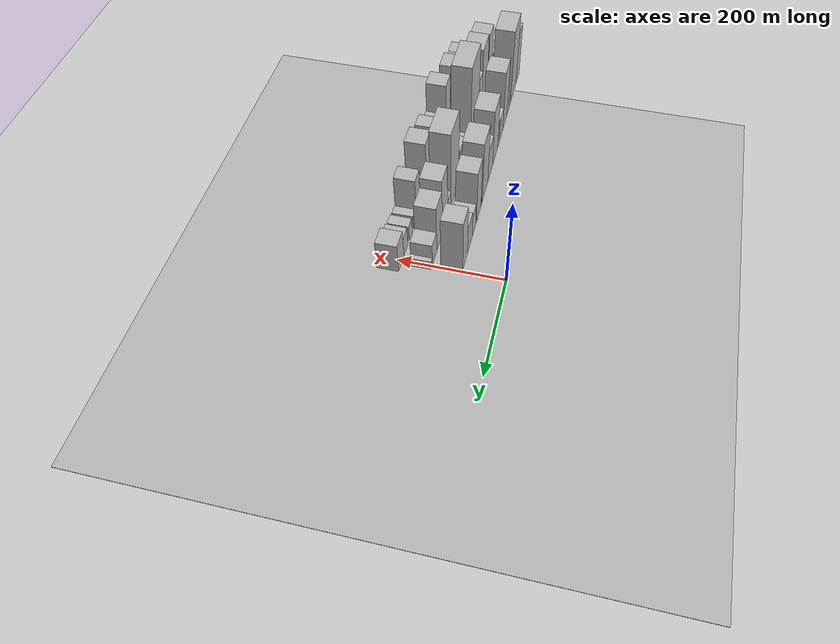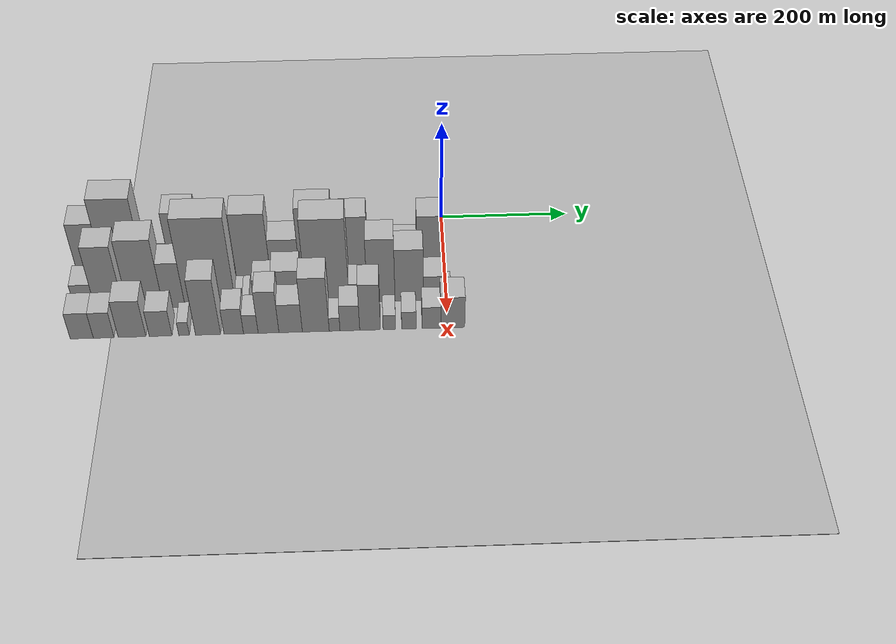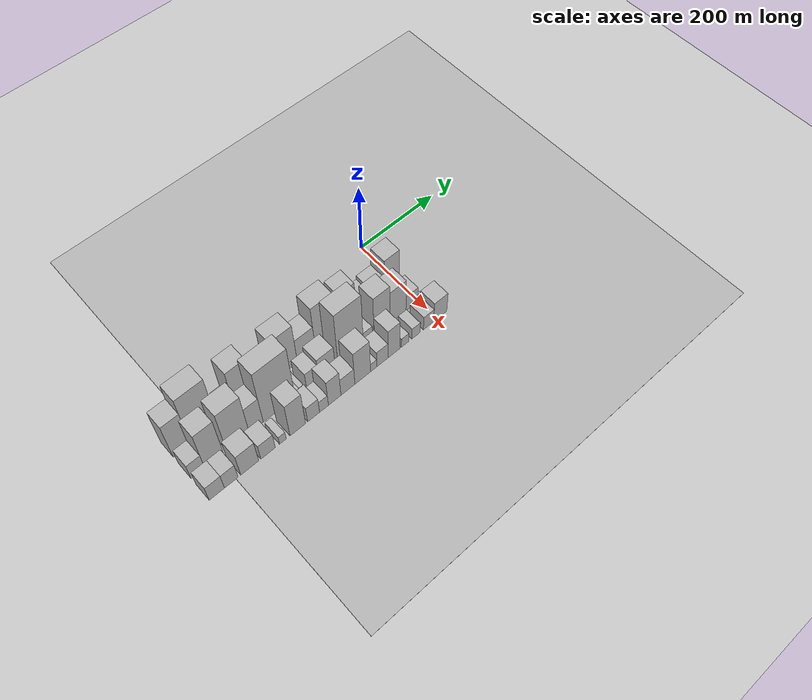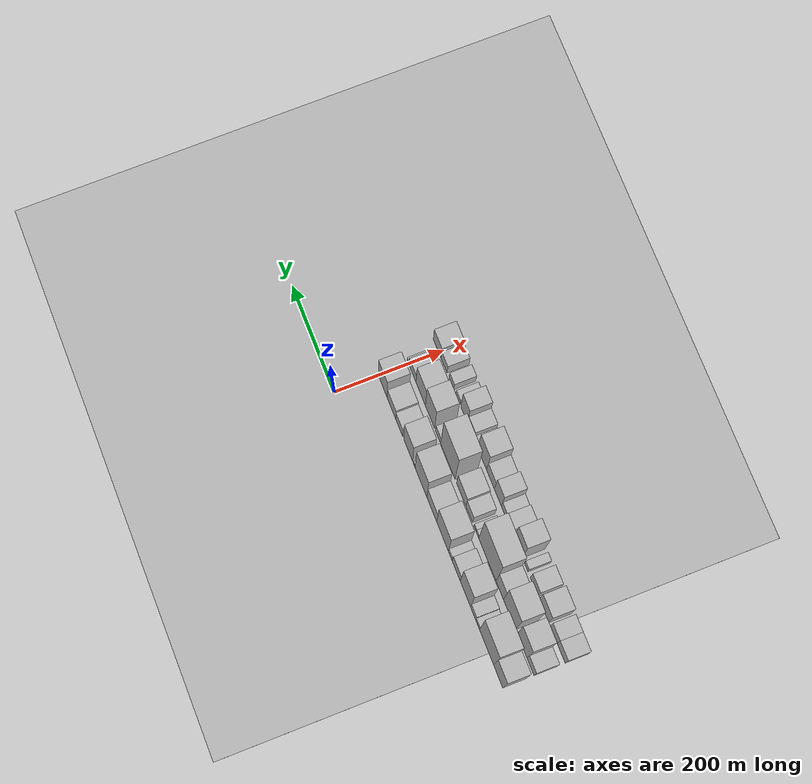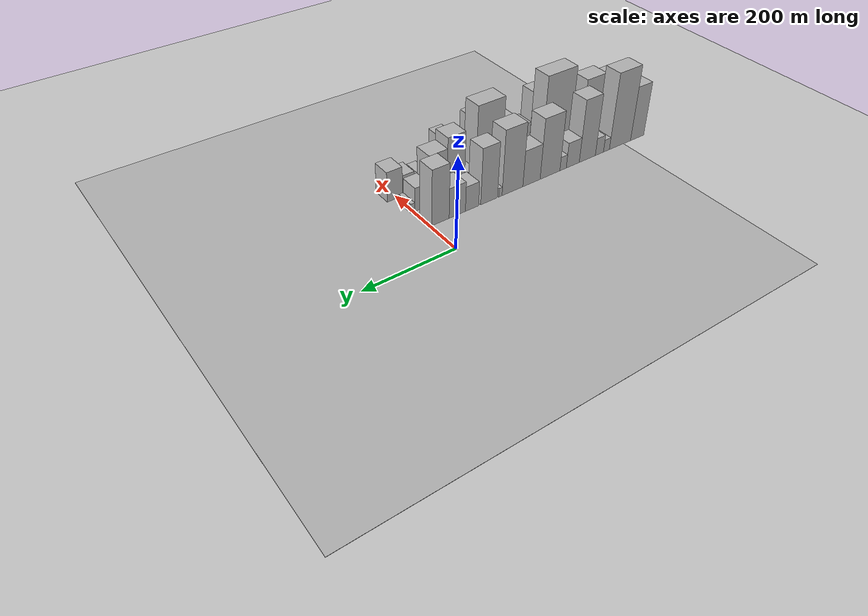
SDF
<sdf version="1.6">
 <world name="default">
  <include><name>ground_plane_1</name><uri>model://HANNAS_ground_plane</uri></include>
  <include>
   <name>ground_plane_2</name>
   <uri>model://HANNAS_ground_plane</uri>
   <pose>100 0 0  0 0 0</pose>
  </include>
  <model name="building_1">
   <static>1</static>
   <pose>100.0000 -540.2787 0 0.000000 0.000000 0.000000</pose>
   <link name="link">
    <pose>0 0 64.50 0 0 0</pose>
    <collision name="collision"><geometry><box><size>40.0000 39.4425 129.0000</size></box></geometry></collision>
    <visual name="visual">
     <cast_shadows>0</cast_shadows>
     <geometry><box><size>40.0000 39.4425 129.0000</size></box></geometry>
     <material>
      <script>
       <uri>model://HANNAS_wall/materials/scripts</uri>
       <uri>model://HANNAS_wall/materials/textures</uri>
       <name>vrc/HANNAS_wall</name>
      </script>
     </material>
    </visual>
   </link>
  </model>
  <model name="building_2">
   <static>1</static>
   <pose>100.0000 -489.5834 0 0.000000 0.000000 0.000000</pose>
   <link name="link">
    <pose>0 0 90.00 0 0 0</pose>
    <collision name="collision"><geometry><box><size>40.0000 61.9483 180.0000</size></box></geometry></collision>
    <visual name="visual">
     <cast_shadows>0</cast_shadows>
     <geometry><box><size>40.0000 61.9483 180.0000</size></box></geometry>
     <material>
      <script>
       <uri>model://HANNAS_wall/materials/scripts</uri>
       <uri>model://HANNAS_wall/materials/textures</uri>
       <name>vrc/HANNAS_wall</name>
      </script>
     </material>
    </visual>
   </link>
  </model>
  <model name="building_3">
   <static>1</static>
   <pose>100.0000 -450.0688 0 0.000000 0.000000 0.000000</pose>
   <link name="link">
    <pose>0 0 15.00 0 0 0</pose>
    <collision name="collision"><geometry><box><size>40.0000 17.0808 30.0000</size></box></geometry></collision>
    <visual name="visual">
     <cast_shadows>0</cast_shadows>
     <geometry><box><size>40.0000 17.0808 30.0000</size></box></geometry>
     <material>
      <script>
       <uri>model://HANNAS_wall/materials/scripts</uri>
       <uri>model://HANNAS_wall/materials/textures</uri>
       <name>vrc/HANNAS_wall</name>
      </script>
     </material>
    </visual>
   </link>
  </model>
  <model name="building_4">
   <static>1</static>
   <pose>100.0000 -429.9862 0 0.000000 0.000000 0.000000</pose>
   <link name="link">
    <pose>0 0 21.00 0 0 0</pose>
    <collision name="collision"><geometry><box><size>40.0000 23.0844 42.0000</size></box></geometry></collision>
    <visual name="visual">
     <cast_shadows>0</cast_shadows>
     <geometry><box><size>40.0000 23.0844 42.0000</size></box></geometry>
     <material>
      <script>
       <uri>model://HANNAS_wall/materials/scripts</uri>
       <uri>model://HANNAS_wall/materials/textures</uri>
       <name>vrc/HANNAS_wall</name>
      </script>
     </material>
    </visual>
   </link>
  </model>
  <model name="building_5">
   <static>1</static>
   <pose>100.0000 -395.9503 0 0.000000 0.000000 0.000000</pose>
   <link name="link">
    <pose>0 0 73.50 0 0 0</pose>
    <collision name="collision"><geometry><box><size>40.0000 44.9876 147.0000</size></box></geometry></collision>
    <visual name="visual">
     <cast_shadows>0</cast_shadows>
     <geometry><box><size>40.0000 44.9876 147.0000</size></box></geometry>
     <material>
      <script>
       <uri>model://HANNAS_wall/materials/scripts</uri>
       <uri>model://HANNAS_wall/materials/textures</uri>
       <name>vrc/HANNAS_wall</name>
      </script>
     </material>
    </visual>
   </link>
  </model>
  <model name="building_6">
   <static>1</static>
   <pose>100.0000 -355.6805 0 0.000000 0.000000 0.000000</pose>
   <link name="link">
    <pose>0 0 30.00 0 0 0</pose>
    <collision name="collision"><geometry><box><size>40.0000 35.5519 60.0000</size></box></geometry></collision>
    <visual name="visual">
     <cast_shadows>0</cast_shadows>
     <geometry><box><size>40.0000 35.5519 60.0000</size></box></geometry>
     <material>
      <script>
       <uri>model://HANNAS_wall/materials/scripts</uri>
       <uri>model://HANNAS_wall/materials/textures</uri>
       <name>vrc/HANNAS_wall</name>
      </script>
     </material>
    </visual>
   </link>
  </model>
  <model name="building_7">
   <static>1</static>
   <pose>100.0000 -329.2143 0 0.000000 0.000000 0.000000</pose>
   <link name="link">
    <pose>0 0 16.50 0 0 0</pose>
    <collision name="collision"><geometry><box><size>40.0000 17.3806 33.0000</size></box></geometry></collision>
    <visual name="visual">
     <cast_shadows>0</cast_shadows>
     <geometry><box><size>40.0000 17.3806 33.0000</size></box></geometry>
     <material>
      <script>
       <uri>model://HANNAS_wall/materials/scripts</uri>
       <uri>model://HANNAS_wall/materials/textures</uri>
       <name>vrc/HANNAS_wall</name>
      </script>
     </material>
    </visual>
   </link>
  </model>
  <model name="building_8">
   <static>1</static>
   <pose>100.0000 -294.2774 0 0.000000 0.000000 0.000000</pose>
   <link name="link">
    <pose>0 0 70.50 0 0 0</pose>
    <collision name="collision"><geometry><box><size>40.0000 52.4931 141.0000</size></box></geometry></collision>
    <visual name="visual">
     <cast_shadows>0</cast_shadows>
     <geometry><box><size>40.0000 52.4931 141.0000</size></box></geometry>
     <material>
      <script>
       <uri>model://HANNAS_wall/materials/scripts</uri>
       <uri>model://HANNAS_wall/materials/textures</uri>
       <name>vrc/HANNAS_wall</name>
      </script>
     </material>
    </visual>
   </link>
  </model>
  <model name="building_9">
   <static>1</static>
   <pose>100.0000 -245.6780 0 0.000000 0.000000 0.000000</pose>
   <link name="link">
    <pose>0 0 42.00 0 0 0</pose>
    <collision name="collision"><geometry><box><size>40.0000 44.7058 84.0000</size></box></geometry></collision>
    <visual name="visual">
     <cast_shadows>0</cast_shadows>
     <geometry><box><size>40.0000 44.7058 84.0000</size></box></geometry>
     <material>
      <script>
       <uri>model://HANNAS_wall/materials/scripts</uri>
       <uri>model://HANNAS_wall/materials/textures</uri>
       <name>vrc/HANNAS_wall</name>
      </script>
     </material>
    </visual>
   </link>
  </model>
  <model name="building_10">
   <static>1</static>
   <pose>100.0000 -196.9684 0 0.000000 0.000000 0.000000</pose>
   <link name="link">
    <pose>0 0 75.00 0 0 0</pose>
    <collision name="collision"><geometry><box><size>40.0000 52.7134 150.0000</size></box></geometry></collision>
    <visual name="visual">
     <cast_shadows>0</cast_shadows>
     <geometry><box><size>40.0000 52.7134 150.0000</size></box></geometry>
     <material>
      <script>
       <uri>model://HANNAS_wall/materials/scripts</uri>
       <uri>model://HANNAS_wall/materials/textures</uri>
       <name>vrc/HANNAS_wall</name>
      </script>
     </material>
    </visual>
   </link>
  </model>
  <model name="building_11">
   <static>1</static>
   <pose>100.0000 -166.2816 0 0.000000 0.000000 0.000000</pose>
   <link name="link">
    <pose>0 0 10.50 0 0 0</pose>
    <collision name="collision"><geometry><box><size>40.0000 8.6601 21.0000</size></box></geometry></collision>
    <visual name="visual">
     <cast_shadows>0</cast_shadows>
     <geometry><box><size>40.0000 8.6601 21.0000</size></box></geometry>
     <material>
      <script>
       <uri>model://HANNAS_wall/materials/scripts</uri>
       <uri>model://HANNAS_wall/materials/textures</uri>
       <name>vrc/HANNAS_wall</name>
      </script>
     </material>
    </visual>
   </link>
  </model>
  <model name="building_12">
   <static>1</static>
   <pose>100.0000 -138.4659 0 0.000000 0.000000 0.000000</pose>
   <link name="link">
    <pose>0 0 64.50 0 0 0</pose>
    <collision name="collision"><geometry><box><size>40.0000 40.9712 129.0000</size></box></geometry></collision>
    <visual name="visual">
     <cast_shadows>0</cast_shadows>
     <geometry><box><size>40.0000 40.9712 129.0000</size></box></geometry>
     <material>
      <script>
       <uri>model://HANNAS_wall/materials/scripts</uri>
       <uri>model://HANNAS_wall/materials/textures</uri>
       <name>vrc/HANNAS_wall</name>
      </script>
     </material>
    </visual>
   </link>
  </model>
  <model name="building_13">
   <static>1</static>
   <pose>100.0000 -97.1301 0 0.000000 0.000000 0.000000</pose>
   <link name="link">
    <pose>0 0 28.50 0 0 0</pose>
    <collision name="collision"><geometry><box><size>40.0000 31.7005 57.0000</size></box></geometry></collision>
    <visual name="visual">
     <cast_shadows>0</cast_shadows>
     <geometry><box><size>40.0000 31.7005 57.0000</size></box></geometry>
     <material>
      <script>
       <uri>model://HANNAS_wall/materials/scripts</uri>
       <uri>model://HANNAS_wall/materials/textures</uri>
       <name>vrc/HANNAS_wall</name>
      </script>
     </material>
    </visual>
   </link>
  </model>
  <model name="building_14">
   <static>1</static>
   <pose>100.0000 -62.0921 0 0.000000 0.000000 0.000000</pose>
   <link name="link">
    <pose>0 0 34.50 0 0 0</pose>
    <collision name="collision"><geometry><box><size>40.0000 38.3755 69.0000</size></box></geometry></collision>
    <visual name="visual">
     <cast_shadows>0</cast_shadows>
     <geometry><box><size>40.0000 38.3755 69.0000</size></box></geometry>
     <material>
      <script>
       <uri>model://HANNAS_wall/materials/scripts</uri>
       <uri>model://HANNAS_wall/materials/textures</uri>
       <name>vrc/HANNAS_wall</name>
      </script>
     </material>
    </visual>
   </link>
  </model>
  <model name="building_15">
   <static>1</static>
   <pose>100.0000 -22.9178 0 0.000000 0.000000 0.000000</pose>
   <link name="link">
    <pose>0 0 63.00 0 0 0</pose>
    <collision name="collision"><geometry><box><size>40.0000 39.9730 126.0000</size></box></geometry></collision>
    <visual name="visual">
     <cast_shadows>0</cast_shadows>
     <geometry><box><size>40.0000 39.9730 126.0000</size></box></geometry>
     <material>
      <script>
       <uri>model://HANNAS_wall/materials/scripts</uri>
       <uri>model://HANNAS_wall/materials/textures</uri>
       <name>vrc/HANNAS_wall</name>
      </script>
     </material>
    </visual>
   </link>
  </model>
  <model name="building_34">
   <static>1</static>
   <pose>155.0000 -544.8172 0 0.000000 0.000000 0.000000</pose>
   <link name="link">
    <pose>0 0 28.50 0 0 0</pose>
    <collision name="collision"><geometry><box><size>40.0000 30.3655 57.0000</size></box></geometry></collision>
    <visual name="visual">
     <cast_shadows>0</cast_shadows>
     <geometry><box><size>40.0000 30.3655 57.0000</size></box></geometry>
     <material>
      <script>
       <uri>model://HANNAS_wall/materials/scripts</uri>
       <uri>model://HANNAS_wall/materials/textures</uri>
       <name>vrc/HANNAS_wall</name>
      </script>
     </material>
    </visual>
   </link>
  </model>
  <model name="building_35">
   <static>1</static>
   <pose>155.0000 -508.4048 0 0.000000 0.000000 0.000000</pose>
   <link name="link">
    <pose>0 0 69.00 0 0 0</pose>
    <collision name="collision"><geometry><box><size>40.0000 42.4594 138.0000</size></box></geometry></collision>
    <visual name="visual">
     <cast_shadows>0</cast_shadows>
     <geometry><box><size>40.0000 42.4594 138.0000</size></box></geometry>
     <material>
      <script>
       <uri>model://HANNAS_wall/materials/scripts</uri>
       <uri>model://HANNAS_wall/materials/textures</uri>
       <name>vrc/HANNAS_wall</name>
      </script>
     </material>
    </visual>
   </link>
  </model>
  <model name="building_36">
   <static>1</static>
   <pose>155.0000 -453.7786 0 0.000000 0.000000 0.000000</pose>
   <link name="link">
    <pose>0 0 75.00 0 0 0</pose>
    <collision name="collision"><geometry><box><size>40.0000 52.7930 150.0000</size></box></geometry></collision>
    <visual name="visual">
     <cast_shadows>0</cast_shadows>
     <geometry><box><size>40.0000 52.7930 150.0000</size></box></geometry>
     <material>
      <script>
       <uri>model://HANNAS_wall/materials/scripts</uri>
       <uri>model://HANNAS_wall/materials/textures</uri>
       <name>vrc/HANNAS_wall</name>
      </script>
     </material>
    </visual>
   </link>
  </model>
  <model name="building_37">
   <static>1</static>
   <pose>155.0000 -411.0060 0 0.000000 0.000000 0.000000</pose>
   <link name="link">
    <pose>0 0 49.50 0 0 0</pose>
    <collision name="collision"><geometry><box><size>40.0000 32.7522 99.0000</size></box></geometry></collision>
    <visual name="visual">
     <cast_shadows>0</cast_shadows>
     <geometry><box><size>40.0000 32.7522 99.0000</size></box></geometry>
     <material>
      <script>
       <uri>model://HANNAS_wall/materials/scripts</uri>
       <uri>model://HANNAS_wall/materials/textures</uri>
       <name>vrc/HANNAS_wall</name>
      </script>
     </material>
    </visual>
   </link>
  </model>
  <model name="building_38">
   <static>1</static>
   <pose>155.0000 -356.5556 0 0.000000 0.000000 0.000000</pose>
   <link name="link">
    <pose>0 0 96.00 0 0 0</pose>
    <collision name="collision"><geometry><box><size>40.0000 76.1487 192.0000</size></box></geometry></collision>
    <visual name="visual">
     <cast_shadows>0</cast_shadows>
     <geometry><box><size>40.0000 76.1487 192.0000</size></box></geometry>
     <material>
      <script>
       <uri>model://HANNAS_wall/materials/scripts</uri>
       <uri>model://HANNAS_wall/materials/textures</uri>
       <name>vrc/HANNAS_wall</name>
      </script>
     </material>
    </visual>
   </link>
  </model>
  <model name="building_39">
   <static>1</static>
   <pose>155.0000 -312.8318 0 0.000000 0.000000 0.000000</pose>
   <link name="link">
    <pose>0 0 12.00 0 0 0</pose>
    <collision name="collision"><geometry><box><size>40.0000 11.2988 24.0000</size></box></geometry></collision>
    <visual name="visual">
     <cast_shadows>0</cast_shadows>
     <geometry><box><size>40.0000 11.2988 24.0000</size></box></geometry>
     <material>
      <script>
       <uri>model://HANNAS_wall/materials/scripts</uri>
       <uri>model://HANNAS_wall/materials/textures</uri>
       <name>vrc/HANNAS_wall</name>
      </script>
     </material>
    </visual>
   </link>
  </model>
  <model name="building_40">
   <static>1</static>
   <pose>155.0000 -301.8594 0 0.000000 0.000000 0.000000</pose>
   <link name="link">
    <pose>0 0 12.00 0 0 0</pose>
    <collision name="collision"><geometry><box><size>40.0000 10.6459 24.0000</size></box></geometry></collision>
    <visual name="visual">
     <cast_shadows>0</cast_shadows>
     <geometry><box><size>40.0000 10.6459 24.0000</size></box></geometry>
     <material>
      <script>
       <uri>model://HANNAS_wall/materials/scripts</uri>
       <uri>model://HANNAS_wall/materials/textures</uri>
       <name>vrc/HANNAS_wall</name>
      </script>
     </material>
    </visual>
   </link>
  </model>
  <model name="building_41">
   <static>1</static>
   <pose>155.0000 -275.8038 0 0.000000 0.000000 0.000000</pose>
   <link name="link">
    <pose>0 0 28.50 0 0 0</pose>
    <collision name="collision"><geometry><box><size>40.0000 29.4653 57.0000</size></box></geometry></collision>
    <visual name="visual">
     <cast_shadows>0</cast_shadows>
     <geometry><box><size>40.0000 29.4653 57.0000</size></box></geometry>
     <material>
      <script>
       <uri>model://HANNAS_wall/materials/scripts</uri>
       <uri>model://HANNAS_wall/materials/textures</uri>
       <name>vrc/HANNAS_wall</name>
      </script>
     </material>
    </visual>
   </link>
  </model>
  <model name="building_42">
   <static>1</static>
   <pose>155.0000 -240.2338 0 0.000000 0.000000 0.000000</pose>
   <link name="link">
    <pose>0 0 37.50 0 0 0</pose>
    <collision name="collision"><geometry><box><size>40.0000 41.6747 75.0000</size></box></geometry></collision>
    <visual name="visual">
     <cast_shadows>0</cast_shadows>
     <geometry><box><size>40.0000 41.6747 75.0000</size></box></geometry>
     <material>
      <script>
       <uri>model://HANNAS_wall/materials/scripts</uri>
       <uri>model://HANNAS_wall/materials/textures</uri>
       <name>vrc/HANNAS_wall</name>
      </script>
     </material>
    </visual>
   </link>
  </model>
  <model name="building_43">
   <static>1</static>
   <pose>155.0000 -179.7584 0 0.000000 0.000000 0.000000</pose>
   <link name="link">
    <pose>0 0 91.50 0 0 0</pose>
    <collision name="collision"><geometry><box><size>40.0000 65.2762 183.0000</size></box></geometry></collision>
    <visual name="visual">
     <cast_shadows>0</cast_shadows>
     <geometry><box><size>40.0000 65.2762 183.0000</size></box></geometry>
     <material>
      <script>
       <uri>model://HANNAS_wall/materials/scripts</uri>
       <uri>model://HANNAS_wall/materials/textures</uri>
       <name>vrc/HANNAS_wall</name>
      </script>
     </material>
    </visual>
   </link>
  </model>
  <model name="building_44">
   <static>1</static>
   <pose>155.0000 -135.3609 0 0.000000 0.000000 0.000000</pose>
   <link name="link">
    <pose>0 0 21.00 0 0 0</pose>
    <collision name="collision"><geometry><box><size>40.0000 23.5189 42.0000</size></box></geometry></collision>
    <visual name="visual">
     <cast_shadows>0</cast_shadows>
     <geometry><box><size>40.0000 23.5189 42.0000</size></box></geometry>
     <material>
      <script>
       <uri>model://HANNAS_wall/materials/scripts</uri>
       <uri>model://HANNAS_wall/materials/textures</uri>
       <name>vrc/HANNAS_wall</name>
      </script>
     </material>
    </visual>
   </link>
  </model>
  <model name="building_45">
   <static>1</static>
   <pose>155.0000 -98.6651 0 0.000000 0.000000 0.000000</pose>
   <link name="link">
    <pose>0 0 69.00 0 0 0</pose>
    <collision name="collision"><geometry><box><size>40.0000 41.8726 138.0000</size></box></geometry></collision>
    <visual name="visual">
     <cast_shadows>0</cast_shadows>
     <geometry><box><size>40.0000 41.8726 138.0000</size></box></geometry>
     <material>
      <script>
       <uri>model://HANNAS_wall/materials/scripts</uri>
       <uri>model://HANNAS_wall/materials/textures</uri>
       <name>vrc/HANNAS_wall</name>
      </script>
     </material>
    </visual>
   </link>
  </model>
  <model name="building_46">
   <static>1</static>
   <pose>155.0000 -56.2733 0 0.000000 0.000000 0.000000</pose>
   <link name="link">
    <pose>0 0 57.00 0 0 0</pose>
    <collision name="collision"><geometry><box><size>40.0000 42.9110 114.0000</size></box></geometry></collision>
    <visual name="visual">
     <cast_shadows>0</cast_shadows>
     <geometry><box><size>40.0000 42.9110 114.0000</size></box></geometry>
     <material>
      <script>
       <uri>model://HANNAS_wall/materials/scripts</uri>
       <uri>model://HANNAS_wall/materials/textures</uri>
       <name>vrc/HANNAS_wall</name>
      </script>
     </material>
    </visual>
   </link>
  </model>
  <model name="building_47">
   <static>1</static>
   <pose>155.0000 -18.7076 0 0.000000 0.000000 0.000000</pose>
   <link name="link">
    <pose>0 0 27.00 0 0 0</pose>
    <collision name="collision"><geometry><box><size>40.0000 32.2204 54.0000</size></box></geometry></collision>
    <visual name="visual">
     <cast_shadows>0</cast_shadows>
     <geometry><box><size>40.0000 32.2204 54.0000</size></box></geometry>
     <material>
      <script>
       <uri>model://HANNAS_wall/materials/scripts</uri>
       <uri>model://HANNAS_wall/materials/textures</uri>
       <name>vrc/HANNAS_wall</name>
      </script>
     </material>
    </visual>
   </link>
  </model>
  <model name="building_48">
   <static>1</static>
   <pose>155.0000 2.2678 0 0.000000 0.000000 0.000000</pose>
   <link name="link">
    <pose>0 0 10.50 0 0 0</pose>
    <collision name="collision"><geometry><box><size>40.0000 9.7306 21.0000</size></box></geometry></collision>
    <visual name="visual">
     <cast_shadows>0</cast_shadows>
     <geometry><box><size>40.0000 9.7306 21.0000</size></box></geometry>
     <material>
      <script>
       <uri>model://HANNAS_wall/materials/scripts</uri>
       <uri>model://HANNAS_wall/materials/textures</uri>
       <name>vrc/HANNAS_wall</name>
      </script>
     </material>
    </visual>
   </link>
  </model>
  <model name="building_63">
   <static>1</static>
   <pose>210.0000 -542.9726 0 0.000000 0.000000 0.000000</pose>
   <link name="link">
    <pose>0 0 28.50 0 0 0</pose>
    <collision name="collision"><geometry><box><size>40.0000 34.0548 57.0000</size></box></geometry></collision>
    <visual name="visual">
     <cast_shadows>0</cast_shadows>
     <geometry><box><size>40.0000 34.0548 57.0000</size></box></geometry>
     <material>
      <script>
       <uri>model://HANNAS_wall/materials/scripts</uri>
       <uri>model://HANNAS_wall/materials/textures</uri>
       <name>vrc/HANNAS_wall</name>
      </script>
     </material>
    </visual>
   </link>
  </model>
  <model name="building_64">
   <static>1</static>
   <pose>210.0000 -510.6657 0 0.000000 0.000000 0.000000</pose>
   <link name="link">
    <pose>0 0 28.50 0 0 0</pose>
    <collision name="collision"><geometry><box><size>40.0000 30.5591 57.0000</size></box></geometry></collision>
    <visual name="visual">
     <cast_shadows>0</cast_shadows>
     <geometry><box><size>40.0000 30.5591 57.0000</size></box></geometry>
     <material>
      <script>
       <uri>model://HANNAS_wall/materials/scripts</uri>
       <uri>model://HANNAS_wall/materials/textures</uri>
       <name>vrc/HANNAS_wall</name>
      </script>
     </material>
    </visual>
   </link>
  </model>
  <model name="building_65">
   <static>1</static>
   <pose>210.0000 -468.8732 0 0.000000 0.000000 0.000000</pose>
   <link name="link">
    <pose>0 0 40.50 0 0 0</pose>
    <collision name="collision"><geometry><box><size>40.0000 41.0258 81.0000</size></box></geometry></collision>
    <visual name="visual">
     <cast_shadows>0</cast_shadows>
     <geometry><box><size>40.0000 41.0258 81.0000</size></box></geometry>
     <material>
      <script>
       <uri>model://HANNAS_wall/materials/scripts</uri>
       <uri>model://HANNAS_wall/materials/textures</uri>
       <name>vrc/HANNAS_wall</name>
      </script>
     </material>
    </visual>
   </link>
  </model>
  <model name="building_66">
   <static>1</static>
   <pose>210.0000 -426.5568 0 0.000000 0.000000 0.000000</pose>
   <link name="link">
    <pose>0 0 28.50 0 0 0</pose>
    <collision name="collision"><geometry><box><size>40.0000 33.6071 57.0000</size></box></geometry></collision>
    <visual name="visual">
     <cast_shadows>0</cast_shadows>
     <geometry><box><size>40.0000 33.6071 57.0000</size></box></geometry>
     <material>
      <script>
       <uri>model://HANNAS_wall/materials/scripts</uri>
       <uri>model://HANNAS_wall/materials/textures</uri>
       <name>vrc/HANNAS_wall</name>
      </script>
     </material>
    </visual>
   </link>
  </model>
  <model name="building_67">
   <static>1</static>
   <pose>210.0000 -391.8886 0 0.000000 0.000000 0.000000</pose>
   <link name="link">
    <pose>0 0 15.00 0 0 0</pose>
    <collision name="collision"><geometry><box><size>40.0000 15.7295 30.0000</size></box></geometry></collision>
    <visual name="visual">
     <cast_shadows>0</cast_shadows>
     <geometry><box><size>40.0000 15.7295 30.0000</size></box></geometry>
     <material>
      <script>
       <uri>model://HANNAS_wall/materials/scripts</uri>
       <uri>model://HANNAS_wall/materials/textures</uri>
       <name>vrc/HANNAS_wall</name>
      </script>
     </material>
    </visual>
   </link>
  </model>
  <model name="building_68">
   <static>1</static>
   <pose>210.0000 -356.4860 0 0.000000 0.000000 0.000000</pose>
   <link name="link">
    <pose>0 0 61.50 0 0 0</pose>
    <collision name="collision"><geometry><box><size>40.0000 37.0756 123.0000</size></box></geometry></collision>
    <visual name="visual">
     <cast_shadows>0</cast_shadows>
     <geometry><box><size>40.0000 37.0756 123.0000</size></box></geometry>
     <material>
      <script>
       <uri>model://HANNAS_wall/materials/scripts</uri>
       <uri>model://HANNAS_wall/materials/textures</uri>
       <name>vrc/HANNAS_wall</name>
      </script>
     </material>
    </visual>
   </link>
  </model>
  <model name="building_69">
   <static>1</static>
   <pose>210.0000 -318.4731 0 0.000000 0.000000 0.000000</pose>
   <link name="link">
    <pose>0 0 28.50 0 0 0</pose>
    <collision name="collision"><geometry><box><size>40.0000 28.9502 57.0000</size></box></geometry></collision>
    <visual name="visual">
     <cast_shadows>0</cast_shadows>
     <geometry><box><size>40.0000 28.9502 57.0000</size></box></geometry>
     <material>
      <script>
       <uri>model://HANNAS_wall/materials/scripts</uri>
       <uri>model://HANNAS_wall/materials/textures</uri>
       <name>vrc/HANNAS_wall</name>
      </script>
     </material>
    </visual>
   </link>
  </model>
  <model name="building_70">
   <static>1</static>
   <pose>210.0000 -293.1687 0 0.000000 0.000000 0.000000</pose>
   <link name="link">
    <pose>0 0 21.00 0 0 0</pose>
    <collision name="collision"><geometry><box><size>40.0000 21.6586 42.0000</size></box></geometry></collision>
    <visual name="visual">
     <cast_shadows>0</cast_shadows>
     <geometry><box><size>40.0000 21.6586 42.0000</size></box></geometry>
     <material>
      <script>
       <uri>model://HANNAS_wall/materials/scripts</uri>
       <uri>model://HANNAS_wall/materials/textures</uri>
       <name>vrc/HANNAS_wall</name>
      </script>
     </material>
    </visual>
   </link>
  </model>
  <model name="building_71">
   <static>1</static>
   <pose>210.0000 -266.9155 0 0.000000 0.000000 0.000000</pose>
   <link name="link">
    <pose>0 0 46.50 0 0 0</pose>
    <collision name="collision"><geometry><box><size>40.0000 30.8478 93.0000</size></box></geometry></collision>
    <visual name="visual">
     <cast_shadows>0</cast_shadows>
     <geometry><box><size>40.0000 30.8478 93.0000</size></box></geometry>
     <material>
      <script>
       <uri>model://HANNAS_wall/materials/scripts</uri>
       <uri>model://HANNAS_wall/materials/textures</uri>
       <name>vrc/HANNAS_wall</name>
      </script>
     </material>
    </visual>
   </link>
  </model>
  <model name="building_72">
   <static>1</static>
   <pose>210.0000 -234.1289 0 0.000000 0.000000 0.000000</pose>
   <link name="link">
    <pose>0 0 31.50 0 0 0</pose>
    <collision name="collision"><geometry><box><size>40.0000 34.7255 63.0000</size></box></geometry></collision>
    <visual name="visual">
     <cast_shadows>0</cast_shadows>
     <geometry><box><size>40.0000 34.7255 63.0000</size></box></geometry>
     <material>
      <script>
       <uri>model://HANNAS_wall/materials/scripts</uri>
       <uri>model://HANNAS_wall/materials/textures</uri>
       <name>vrc/HANNAS_wall</name>
      </script>
     </material>
    </visual>
   </link>
  </model>
  <model name="building_73">
   <static>1</static>
   <pose>210.0000 -196.7771 0 0.000000 0.000000 0.000000</pose>
   <link name="link">
    <pose>0 0 60.00 0 0 0</pose>
    <collision name="collision"><geometry><box><size>40.0000 39.9782 120.0000</size></box></geometry></collision>
    <visual name="visual">
     <cast_shadows>0</cast_shadows>
     <geometry><box><size>40.0000 39.9782 120.0000</size></box></geometry>
     <material>
      <script>
       <uri>model://HANNAS_wall/materials/scripts</uri>
       <uri>model://HANNAS_wall/materials/textures</uri>
       <name>vrc/HANNAS_wall</name>
      </script>
     </material>
    </visual>
   </link>
  </model>
  <model name="building_74">
   <static>1</static>
   <pose>210.0000 -168.7829 0 0.000000 0.000000 0.000000</pose>
   <link name="link">
    <pose>0 0 15.00 0 0 0</pose>
    <collision name="collision"><geometry><box><size>40.0000 16.0102 30.0000</size></box></geometry></collision>
    <visual name="visual">
     <cast_shadows>0</cast_shadows>
     <geometry><box><size>40.0000 16.0102 30.0000</size></box></geometry>
     <material>
      <script>
       <uri>model://HANNAS_wall/materials/scripts</uri>
       <uri>model://HANNAS_wall/materials/textures</uri>
       <name>vrc/HANNAS_wall</name>
      </script>
     </material>
    </visual>
   </link>
  </model>
  <model name="building_75">
   <static>1</static>
   <pose>210.0000 -146.1226 0 0.000000 0.000000 0.000000</pose>
   <link name="link">
    <pose>0 0 28.50 0 0 0</pose>
    <collision name="collision"><geometry><box><size>40.0000 29.3104 57.0000</size></box></geometry></collision>
    <visual name="visual">
     <cast_shadows>0</cast_shadows>
     <geometry><box><size>40.0000 29.3104 57.0000</size></box></geometry>
     <material>
      <script>
       <uri>model://HANNAS_wall/materials/scripts</uri>
       <uri>model://HANNAS_wall/materials/textures</uri>
       <name>vrc/HANNAS_wall</name>
      </script>
     </material>
    </visual>
   </link>
  </model>
  <model name="building_76">
   <static>1</static>
   <pose>210.0000 -116.0701 0 0.000000 0.000000 0.000000</pose>
   <link name="link">
    <pose>0 0 51.00 0 0 0</pose>
    <collision name="collision"><geometry><box><size>40.0000 30.7946 102.0000</size></box></geometry></collision>
    <visual name="visual">
     <cast_shadows>0</cast_shadows>
     <geometry><box><size>40.0000 30.7946 102.0000</size></box></geometry>
     <material>
      <script>
       <uri>model://HANNAS_wall/materials/scripts</uri>
       <uri>model://HANNAS_wall/materials/textures</uri>
       <name>vrc/HANNAS_wall</name>
      </script>
     </material>
    </visual>
   </link>
  </model>
  <model name="building_77">
   <static>1</static>
   <pose>210.0000 -87.3403 0 0.000000 0.000000 0.000000</pose>
   <link name="link">
    <pose>0 0 16.50 0 0 0</pose>
    <collision name="collision"><geometry><box><size>40.0000 18.6649 33.0000</size></box></geometry></collision>
    <visual name="visual">
     <cast_shadows>0</cast_shadows>
     <geometry><box><size>40.0000 18.6649 33.0000</size></box></geometry>
     <material>
      <script>
       <uri>model://HANNAS_wall/materials/scripts</uri>
       <uri>model://HANNAS_wall/materials/textures</uri>
       <name>vrc/HANNAS_wall</name>
      </script>
     </material>
    </visual>
   </link>
  </model>
  <model name="building_78">
   <static>1</static>
   <pose>210.0000 -58.1697 0 0.000000 0.000000 0.000000</pose>
   <link name="link">
    <pose>0 0 19.50 0 0 0</pose>
    <collision name="collision"><geometry><box><size>40.0000 21.6764 39.0000</size></box></geometry></collision>
    <visual name="visual">
     <cast_shadows>0</cast_shadows>
     <geometry><box><size>40.0000 21.6764 39.0000</size></box></geometry>
     <material>
      <script>
       <uri>model://HANNAS_wall/materials/scripts</uri>
       <uri>model://HANNAS_wall/materials/textures</uri>
       <name>vrc/HANNAS_wall</name>
      </script>
     </material>
    </visual>
   </link>
  </model>
  <model name="building_79">
   <static>1</static>
   <pose>210.0000 -24.6039 0 0.000000 0.000000 0.000000</pose>
   <link name="link">
    <pose>0 0 24.00 0 0 0</pose>
    <collision name="collision"><geometry><box><size>40.0000 27.4551 48.0000</size></box></geometry></collision>
    <visual name="visual">
     <cast_shadows>0</cast_shadows>
     <geometry><box><size>40.0000 27.4551 48.0000</size></box></geometry>
     <material>
      <script>
       <uri>model://HANNAS_wall/materials/scripts</uri>
       <uri>model://HANNAS_wall/materials/textures</uri>
       <name>vrc/HANNAS_wall</name>
      </script>
     </material>
    </visual>
   </link>
  </model>
  <model name="building_80">
   <static>1</static>
   <pose>210.0000 7.0162 0 0.000000 0.000000 0.000000</pose>
   <link name="link">
    <pose>0 0 34.50 0 0 0</pose>
    <collision name="collision"><geometry><box><size>40.0000 35.7853 69.0000</size></box></geometry></collision>
    <visual name="visual">
     <cast_shadows>0</cast_shadows>
     <geometry><box><size>40.0000 35.7853 69.0000</size></box></geometry>
     <material>
      <script>
       <uri>model://HANNAS_wall/materials/scripts</uri>
       <uri>model://HANNAS_wall/materials/textures</uri>
       <name>vrc/HANNAS_wall</name>
      </script>
     </material>
    </visual>
   </link>
  </model>
 </world>
</sdf>
